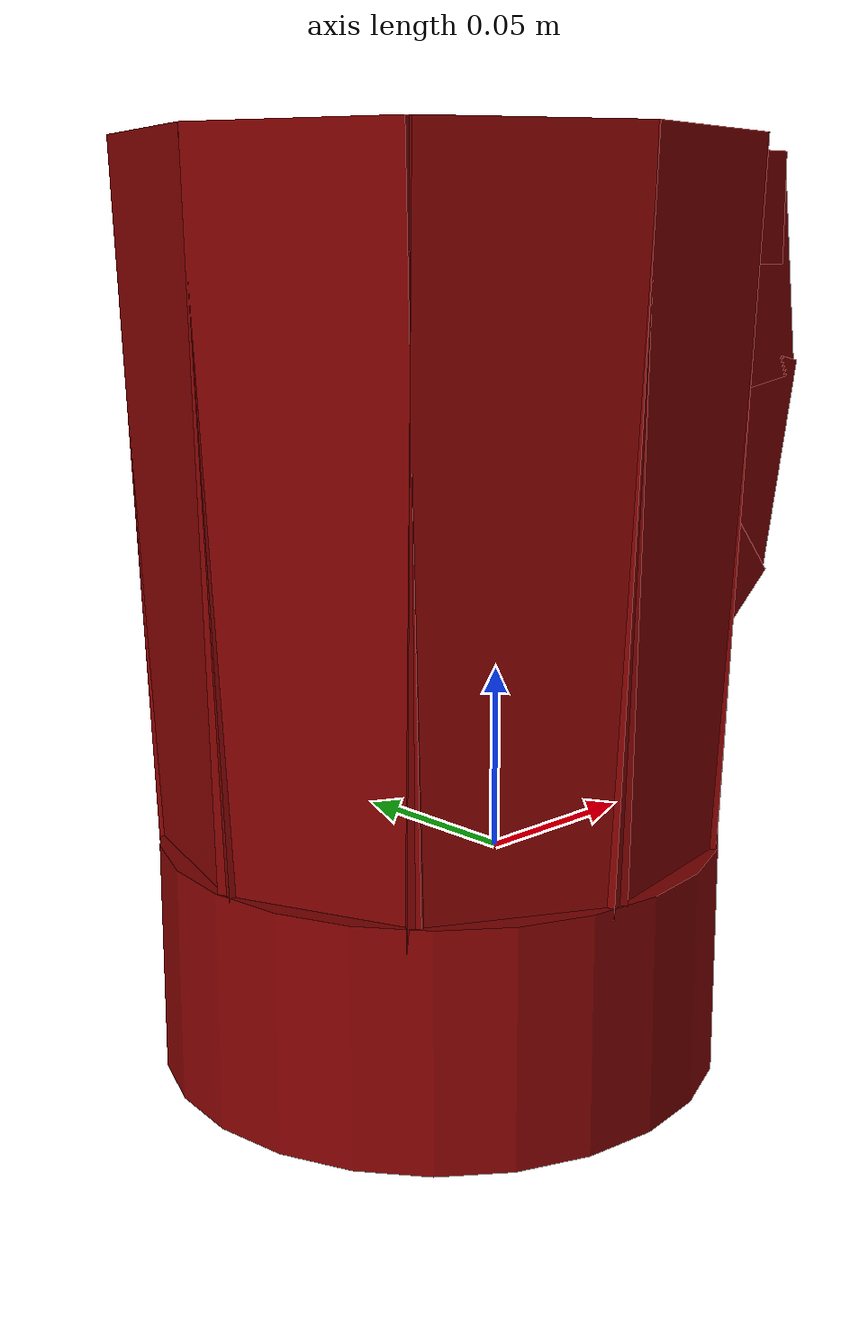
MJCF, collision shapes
<mujoco model="model">
  <option timestep="0.002" gravity="0.0 0.0 -9.81"/>
  <compiler angle="radian"/>
  <asset>
    <mesh file="visuals/blade.obj" name="blade_vis"/>
    <mesh file="visuals/pitcher.obj" name="pitcher_vis"/>
    <mesh file="visuals/pitcher_main.obj" name="pitcher_main_vis"/>
    <texture file="visuals/T_BC001.png" name="pitcher_material" type="2d"/>
    <material name="pitcher_material" rgba="1 1 1 1.0" texture="pitcher_material" shininess="0.4472135901451111" specular="1"/>
    <texture file="visuals/T_BC001.png" name="blade_material" type="2d"/>
    <material name="blade_material" rgba="1 1 1 1.0" texture="blade_material" shininess="0.4472135901451111" specular="1"/>
    <texture file="visuals/T_BC001.png" name="pitcher_main_material" type="2d"/>
    <material name="pitcher_main_material" rgba="1 1 1 0.800000011920929" texture="pitcher_main_material" shininess="0.4472135901451111" specular="0.3103448502657381"/>
  </asset>
  <default>
    <default class="visual">
      <geom conaffinity="0" contype="0" group="1" type="mesh"/>
    </default>
    <default class="collision">
      <geom group="0" rgba="0.5 0 0 0.5" density="1.0" solref="0.004 1" solimp="0.998 0.998 0.001"/>
    </default>
    <default class="spawn">
      <geom group="0" rgba="1 1 1 0.5" contype="0" conaffinity="0"/>
      <site group="0" rgba="1 1 1 0.5"/>
    </default>
    <default class="region">
      <geom group="1" conaffinity="0" contype="0" rgba="0 1 0 0" mass="0"/>
    </default>
  </default>
  <worldbody>
    <body>
      <body name="object">
        <body name="pitcher">
          <geom mesh="pitcher_vis" type="mesh" solimp="0.998 0.998 0.001" solref="0.001 1" friction="0.95 0.3 0.1" class="visual" material="pitcher_material"/>
          <geom type="cylinder" pos="-0.01387144 0.00759112 -0.02343743" size="0.0755901038646698 0.031190989539027214" quat="1.0 0.0 0.0 0.0" class="collision"/>
          <geom type="box" pos="0.06034970 0.00758336 0.06784143" size="0.011583236046135426 0.027263129130005836 0.12090808898210526" quat="1.0 0.0 0.0 0.0" class="collision"/>
          <geom class="collision" type="box" pos="0.09159835 0.00748012 0.17227817" size="0.021328119561076164 0.015841878950595856 0.01625138334929943" quat="1.0 0.0 0.0 0.0" name="pitcher_handle_3"/>
          <geom class="collision" type="box" pos="0.10630482 0.00791430 0.15362938" size="0.03252037614583969 0.01542231347411871 0.011712320148944855" quat="0.7547217607498169 0.0 0.6560450196266174 0.0" name="pitcher_handle_2"/>
          <geom class="collision" type="box" pos="0.10537517 0.00791430 0.09766448" size="0.03252037614583969 0.01542231161147356 0.011712320148944855" quat="0.6293348073959351 0.0 0.7771342992782593 0.0" name="pitcher_handle_1"/>
          <geom class="collision" type="box" pos="0.08100685 0.00791430 0.05260452" size="0.030332840979099274 0.01542231161147356 0.01171231921762228" quat="0.34662744402885437 0.0 0.93800288438797 0.0" name="pitcher_handle_0"/>
          <body name="blade">
            <geom mesh="blade_vis" type="mesh" solimp="0.998 0.998 0.001" solref="0.001 1" friction="0.95 0.3 0.1" class="visual" material="blade_material"/>
            <geom type="box" pos="-0.01365844 0.00634319 0.01533413" size="0.014491913840174675 0.017638348042964935 0.0007777351420372725" quat="1.0 0.0 0.0 0.0" class="collision"/>
            <geom type="box" pos="-0.01384328 0.03973202 0.01533413" size="0.0050698015838861465 0.016161534935235977 0.0007777351420372725" quat="1.0 0.0 0.0 0.0" class="collision"/>
            <geom type="box" pos="-0.01384328 -0.02448858 0.01533413" size="0.0050698015838861465 0.016161534935235977 0.0007777351420372725" quat="1.0 0.0 0.0 0.0" class="collision"/>
            <geom type="box" pos="-0.04553313 0.00760271 0.02032603" size="0.0050698015838861465 0.01778339222073555 0.0007777351420372725" quat="0.6976118087768555 -0.11548939347267151 0.1154894009232521 -0.6976117491722107" class="collision"/>
            <geom type="box" pos="0.01769215 0.00760271 0.02042771" size="0.0050698015838861465 0.01746790111064911 0.0007777351420372725" quat="0.6976118087768555 -0.11548939347267151 -0.1154894009232521 0.6976117491722107" class="collision"/>
          </body>
          <body name="pitcher_main">
            <geom class="region" type="cylinder" size="0.05459639057517052 0.06547840684652328" pos="-0.01375501 0.00755227 0.08109854" rgba="0 0 1 0.5" name="reg_int"/>
            <geom mesh="pitcher_main_vis" type="mesh" solimp="0.998 0.998 0.001" solref="0.001 1" friction="0.95 0.3 0.1" class="visual" material="pitcher_main_material"/>
            <geom type="box" pos="0.05442135 0.00758336 0.09247573" size="0.008866118267178535 0.027263129130005836 0.0962737575173378" quat="1.0 0.0 0.0 0.0" class="collision"/>
            <geom type="box" pos="0.03891332 -0.03551471 0.09247573" size="0.005154433660209179 0.027263129130005836 0.09614638984203339" quat="0.9419527649879456 0.006479029078036547 0.018207471817731857 -0.33518874645233154" class="collision"/>
            <geom type="box" pos="-0.04634138 -0.05228703 0.09247573" size="0.005154434125870466 0.027263129130005836 0.09614638984203339" quat="0.5137460827827454 0.016579383984208107 0.009930452331900597 -0.8577246069908142" class="collision"/>
            <geom type="box" pos="-0.00107414 -0.05927414 0.09247573" size="0.005154433660209179 0.027263129130005836 0.09614638984203339" quat="0.771568238735199 0.012290717102587223 0.01491402555257082 -0.6358529329299927" class="collision"/>
            <geom type="box" pos="-0.05083842 0.06528205 0.09247573" size="0.005154433660209179 0.027263129130005836 0.09614638984203339" quat="0.4774850010871887 -0.016979556530714035 0.00922954361885786 0.8784273266792297" class="collision"/>
            <geom type="box" pos="-0.00432211 0.07546330 0.09247573" size="0.005154433660209179 0.027263129130005836 0.09614638984203339" quat="0.7537038326263428 -0.01269812323153019 0.014568712562322617 0.6569300293922424" class="collision"/>
            <geom type="box" pos="-0.07905889 0.02830759 0.09247573" size="0.005154433660209179 0.027263129130005836 0.09614638984203339" quat="0.14990121126174927 -0.019107436761260033 0.002897514495998621 0.9885120987892151" class="collision"/>
            <geom type="box" pos="-0.07734878 -0.01746379 0.09247573" size="0.005154433660209179 0.027263129130005836 0.09614638984203339" quat="0.1901738941669464 0.018973061814904213 0.0036759646609425545 -0.9815601706504822" class="collision"/>
            <geom type="box" pos="0.03788485 0.05238785 0.09247573" size="0.005154434125870466 0.027263129130005836 0.09614638984203339" quat="0.9367375373840332 -0.006755633745342493 0.018106667324900627 0.3494986593723297" class="collision"/>
          </body>
        </body>
        <geom class="region" name="reg_bbox" density="0" type="box" pos="0.009929 0.0078119999999999995 0.067386" size="0.10928099999999999 0.079427 0.122275"/>
      </body>
      <site rgba="0 1 0 0" size="0.005" pos="-0.005045485 0.00780499 0.20547592" name="anchor_site"/>
    </body>
  </worldbody>
</mujoco>
